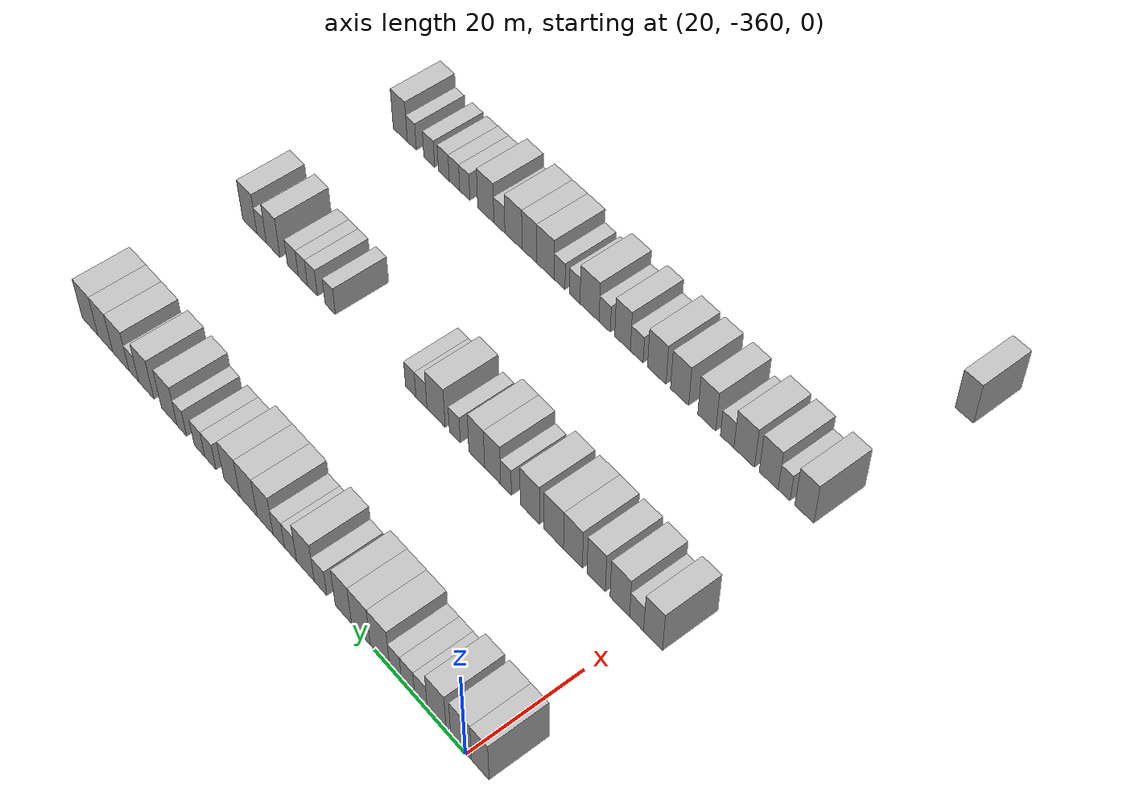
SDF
<sdf version="1.6">
 <world name="default">
  <model name="building_21">
   <static>1</static>
   <pose>25.0000 -362.9768 0 0.000000 0.000000 0.000000</pose>
   <link name="link">
    <pose>0 0 4.50 0 0 0</pose>
    <collision name="collision"><geometry><box><size>10.0000 3.6815 9.0000</size></box></geometry></collision>
    <visual name="visual">
     <cast_shadows>0</cast_shadows>
     <geometry><box><size>10.0000 3.6815 9.0000</size></box></geometry>
     <material>
      <script>
       <uri>model://HANNAS_wall/materials/scripts</uri>
       <uri>model://HANNAS_wall/materials/textures</uri>
       <name>vrc/HANNAS_wall</name>
      </script>
     </material>
    </visual>
   </link>
  </model>
  <model name="building_22">
   <static>1</static>
   <pose>25.0000 -358.9369 0 0.000000 0.000000 0.000000</pose>
   <link name="link">
    <pose>0 0 4.50 0 0 0</pose>
    <collision name="collision"><geometry><box><size>10.0000 4.3981 9.0000</size></box></geometry></collision>
    <visual name="visual">
     <cast_shadows>0</cast_shadows>
     <geometry><box><size>10.0000 4.3981 9.0000</size></box></geometry>
     <material>
      <script>
       <uri>model://HANNAS_wall/materials/scripts</uri>
       <uri>model://HANNAS_wall/materials/textures</uri>
       <name>vrc/HANNAS_wall</name>
      </script>
     </material>
    </visual>
   </link>
  </model>
  <model name="building_23">
   <static>1</static>
   <pose>25.0000 -353.7045 0 0.000000 0.000000 0.000000</pose>
   <link name="link">
    <pose>0 0 4.50 0 0 0</pose>
    <collision name="collision"><geometry><box><size>10.0000 4.0668 9.0000</size></box></geometry></collision>
    <visual name="visual">
     <cast_shadows>0</cast_shadows>
     <geometry><box><size>10.0000 4.0668 9.0000</size></box></geometry>
     <material>
      <script>
       <uri>model://HANNAS_wall/materials/scripts</uri>
       <uri>model://HANNAS_wall/materials/textures</uri>
       <name>vrc/HANNAS_wall</name>
      </script>
     </material>
    </visual>
   </link>
  </model>
  <model name="building_24">
   <static>1</static>
   <pose>25.0000 -350.2815 0 0.000000 0.000000 0.000000</pose>
   <link name="link">
    <pose>0 0 3.00 0 0 0</pose>
    <collision name="collision"><geometry><box><size>10.0000 2.7791 6.0000</size></box></geometry></collision>
    <visual name="visual">
     <cast_shadows>0</cast_shadows>
     <geometry><box><size>10.0000 2.7791 6.0000</size></box></geometry>
     <material>
      <script>
       <uri>model://HANNAS_wall/materials/scripts</uri>
       <uri>model://HANNAS_wall/materials/textures</uri>
       <name>vrc/HANNAS_wall</name>
      </script>
     </material>
    </visual>
   </link>
  </model>
  <model name="building_25">
   <static>1</static>
   <pose>25.0000 -347.4159 0 0.000000 0.000000 0.000000</pose>
   <link name="link">
    <pose>0 0 3.00 0 0 0</pose>
    <collision name="collision"><geometry><box><size>10.0000 2.9520 6.0000</size></box></geometry></collision>
    <visual name="visual">
     <cast_shadows>0</cast_shadows>
     <geometry><box><size>10.0000 2.9520 6.0000</size></box></geometry>
     <material>
      <script>
       <uri>model://HANNAS_wall/materials/scripts</uri>
       <uri>model://HANNAS_wall/materials/textures</uri>
       <name>vrc/HANNAS_wall</name>
      </script>
     </material>
    </visual>
   </link>
  </model>
  <model name="building_26">
   <static>1</static>
   <pose>25.0000 -344.6306 0 0.000000 0.000000 0.000000</pose>
   <link name="link">
    <pose>0 0 3.00 0 0 0</pose>
    <collision name="collision"><geometry><box><size>10.0000 2.6186 6.0000</size></box></geometry></collision>
    <visual name="visual">
     <cast_shadows>0</cast_shadows>
     <geometry><box><size>10.0000 2.6186 6.0000</size></box></geometry>
     <material>
      <script>
       <uri>model://HANNAS_wall/materials/scripts</uri>
       <uri>model://HANNAS_wall/materials/textures</uri>
       <name>vrc/HANNAS_wall</name>
      </script>
     </material>
    </visual>
   </link>
  </model>
  <model name="building_27">
   <static>1</static>
   <pose>25.0000 -341.1353 0 0.000000 0.000000 0.000000</pose>
   <link name="link">
    <pose>0 0 4.50 0 0 0</pose>
    <collision name="collision"><geometry><box><size>10.0000 4.3720 9.0000</size></box></geometry></collision>
    <visual name="visual">
     <cast_shadows>0</cast_shadows>
     <geometry><box><size>10.0000 4.3720 9.0000</size></box></geometry>
     <material>
      <script>
       <uri>model://HANNAS_wall/materials/scripts</uri>
       <uri>model://HANNAS_wall/materials/textures</uri>
       <name>vrc/HANNAS_wall</name>
      </script>
     </material>
    </visual>
   </link>
  </model>
  <model name="building_28">
   <static>1</static>
   <pose>25.0000 -336.7912 0 0.000000 0.000000 0.000000</pose>
   <link name="link">
    <pose>0 0 4.50 0 0 0</pose>
    <collision name="collision"><geometry><box><size>10.0000 4.3162 9.0000</size></box></geometry></collision>
    <visual name="visual">
     <cast_shadows>0</cast_shadows>
     <geometry><box><size>10.0000 4.3162 9.0000</size></box></geometry>
     <material>
      <script>
       <uri>model://HANNAS_wall/materials/scripts</uri>
       <uri>model://HANNAS_wall/materials/textures</uri>
       <name>vrc/HANNAS_wall</name>
      </script>
     </material>
    </visual>
   </link>
  </model>
  <model name="building_29">
   <static>1</static>
   <pose>25.0000 -332.7534 0 0.000000 0.000000 0.000000</pose>
   <link name="link">
    <pose>0 0 4.50 0 0 0</pose>
    <collision name="collision"><geometry><box><size>10.0000 3.7593 9.0000</size></box></geometry></collision>
    <visual name="visual">
     <cast_shadows>0</cast_shadows>
     <geometry><box><size>10.0000 3.7593 9.0000</size></box></geometry>
     <material>
      <script>
       <uri>model://HANNAS_wall/materials/scripts</uri>
       <uri>model://HANNAS_wall/materials/textures</uri>
       <name>vrc/HANNAS_wall</name>
      </script>
     </material>
    </visual>
   </link>
  </model>
  <model name="building_30">
   <static>1</static>
   <pose>25.0000 -327.4053 0 0.000000 0.000000 0.000000</pose>
   <link name="link">
    <pose>0 0 3.00 0 0 0</pose>
    <collision name="collision"><geometry><box><size>10.0000 2.9368 6.0000</size></box></geometry></collision>
    <visual name="visual">
     <cast_shadows>0</cast_shadows>
     <geometry><box><size>10.0000 2.9368 6.0000</size></box></geometry>
     <material>
      <script>
       <uri>model://HANNAS_wall/materials/scripts</uri>
       <uri>model://HANNAS_wall/materials/textures</uri>
       <name>vrc/HANNAS_wall</name>
      </script>
     </material>
    </visual>
   </link>
  </model>
  <model name="building_31">
   <static>1</static>
   <pose>25.0000 -323.8055 0 0.000000 0.000000 0.000000</pose>
   <link name="link">
    <pose>0 0 4.50 0 0 0</pose>
    <collision name="collision"><geometry><box><size>10.0000 4.2628 9.0000</size></box></geometry></collision>
    <visual name="visual">
     <cast_shadows>0</cast_shadows>
     <geometry><box><size>10.0000 4.2628 9.0000</size></box></geometry>
     <material>
      <script>
       <uri>model://HANNAS_wall/materials/scripts</uri>
       <uri>model://HANNAS_wall/materials/textures</uri>
       <name>vrc/HANNAS_wall</name>
      </script>
     </material>
    </visual>
   </link>
  </model>
  <model name="building_32">
   <static>1</static>
   <pose>25.0000 -320.2329 0 0.000000 0.000000 0.000000</pose>
   <link name="link">
    <pose>0 0 3.00 0 0 0</pose>
    <collision name="collision"><geometry><box><size>10.0000 2.8823 6.0000</size></box></geometry></collision>
    <visual name="visual">
     <cast_shadows>0</cast_shadows>
     <geometry><box><size>10.0000 2.8823 6.0000</size></box></geometry>
     <material>
      <script>
       <uri>model://HANNAS_wall/materials/scripts</uri>
       <uri>model://HANNAS_wall/materials/textures</uri>
       <name>vrc/HANNAS_wall</name>
      </script>
     </material>
    </visual>
   </link>
  </model>
  <model name="building_33">
   <static>1</static>
   <pose>25.0000 -317.4139 0 0.000000 0.000000 0.000000</pose>
   <link name="link">
    <pose>0 0 3.00 0 0 0</pose>
    <collision name="collision"><geometry><box><size>10.0000 2.7558 6.0000</size></box></geometry></collision>
    <visual name="visual">
     <cast_shadows>0</cast_shadows>
     <geometry><box><size>10.0000 2.7558 6.0000</size></box></geometry>
     <material>
      <script>
       <uri>model://HANNAS_wall/materials/scripts</uri>
       <uri>model://HANNAS_wall/materials/textures</uri>
       <name>vrc/HANNAS_wall</name>
      </script>
     </material>
    </visual>
   </link>
  </model>
  <model name="building_34">
   <static>1</static>
   <pose>25.0000 -314.0761 0 0.000000 0.000000 0.000000</pose>
   <link name="link">
    <pose>0 0 4.50 0 0 0</pose>
    <collision name="collision"><geometry><box><size>10.0000 3.9198 9.0000</size></box></geometry></collision>
    <visual name="visual">
     <cast_shadows>0</cast_shadows>
     <geometry><box><size>10.0000 3.9198 9.0000</size></box></geometry>
     <material>
      <script>
       <uri>model://HANNAS_wall/materials/scripts</uri>
       <uri>model://HANNAS_wall/materials/textures</uri>
       <name>vrc/HANNAS_wall</name>
      </script>
     </material>
    </visual>
   </link>
  </model>
  <model name="building_35">
   <static>1</static>
   <pose>25.0000 -309.9775 0 0.000000 0.000000 0.000000</pose>
   <link name="link">
    <pose>0 0 4.50 0 0 0</pose>
    <collision name="collision"><geometry><box><size>10.0000 4.2775 9.0000</size></box></geometry></collision>
    <visual name="visual">
     <cast_shadows>0</cast_shadows>
     <geometry><box><size>10.0000 4.2775 9.0000</size></box></geometry>
     <material>
      <script>
       <uri>model://HANNAS_wall/materials/scripts</uri>
       <uri>model://HANNAS_wall/materials/textures</uri>
       <name>vrc/HANNAS_wall</name>
      </script>
     </material>
    </visual>
   </link>
  </model>
  <model name="building_36">
   <static>1</static>
   <pose>25.0000 -305.7788 0 0.000000 0.000000 0.000000</pose>
   <link name="link">
    <pose>0 0 4.50 0 0 0</pose>
    <collision name="collision"><geometry><box><size>10.0000 4.1198 9.0000</size></box></geometry></collision>
    <visual name="visual">
     <cast_shadows>0</cast_shadows>
     <geometry><box><size>10.0000 4.1198 9.0000</size></box></geometry>
     <material>
      <script>
       <uri>model://HANNAS_wall/materials/scripts</uri>
       <uri>model://HANNAS_wall/materials/textures</uri>
       <name>vrc/HANNAS_wall</name>
      </script>
     </material>
    </visual>
   </link>
  </model>
  <model name="building_37">
   <static>1</static>
   <pose>25.0000 -300.2874 0 0.000000 0.000000 0.000000</pose>
   <link name="link">
    <pose>0 0 3.00 0 0 0</pose>
    <collision name="collision"><geometry><box><size>10.0000 2.8631 6.0000</size></box></geometry></collision>
    <visual name="visual">
     <cast_shadows>0</cast_shadows>
     <geometry><box><size>10.0000 2.8631 6.0000</size></box></geometry>
     <material>
      <script>
       <uri>model://HANNAS_wall/materials/scripts</uri>
       <uri>model://HANNAS_wall/materials/textures</uri>
       <name>vrc/HANNAS_wall</name>
      </script>
     </material>
    </visual>
   </link>
  </model>
  <model name="building_38">
   <static>1</static>
   <pose>25.0000 -297.4788 0 0.000000 0.000000 0.000000</pose>
   <link name="link">
    <pose>0 0 3.00 0 0 0</pose>
    <collision name="collision"><geometry><box><size>10.0000 2.7540 6.0000</size></box></geometry></collision>
    <visual name="visual">
     <cast_shadows>0</cast_shadows>
     <geometry><box><size>10.0000 2.7540 6.0000</size></box></geometry>
     <material>
      <script>
       <uri>model://HANNAS_wall/materials/scripts</uri>
       <uri>model://HANNAS_wall/materials/textures</uri>
       <name>vrc/HANNAS_wall</name>
      </script>
     </material>
    </visual>
   </link>
  </model>
  <model name="building_39">
   <static>1</static>
   <pose>25.0000 -292.8592 0 0.000000 0.000000 0.000000</pose>
   <link name="link">
    <pose>0 0 3.00 0 0 0</pose>
    <collision name="collision"><geometry><box><size>10.0000 2.4850 6.0000</size></box></geometry></collision>
    <visual name="visual">
     <cast_shadows>0</cast_shadows>
     <geometry><box><size>10.0000 2.4850 6.0000</size></box></geometry>
     <material>
      <script>
       <uri>model://HANNAS_wall/materials/scripts</uri>
       <uri>model://HANNAS_wall/materials/textures</uri>
       <name>vrc/HANNAS_wall</name>
      </script>
     </material>
    </visual>
   </link>
  </model>
  <model name="building_40">
   <static>1</static>
   <pose>25.0000 -289.5277 0 0.000000 0.000000 0.000000</pose>
   <link name="link">
    <pose>0 0 4.50 0 0 0</pose>
    <collision name="collision"><geometry><box><size>10.0000 4.1780 9.0000</size></box></geometry></collision>
    <visual name="visual">
     <cast_shadows>0</cast_shadows>
     <geometry><box><size>10.0000 4.1780 9.0000</size></box></geometry>
     <material>
      <script>
       <uri>model://HANNAS_wall/materials/scripts</uri>
       <uri>model://HANNAS_wall/materials/textures</uri>
       <name>vrc/HANNAS_wall</name>
      </script>
     </material>
    </visual>
   </link>
  </model>
  <model name="building_41">
   <static>1</static>
   <pose>25.0000 -283.3827 0 0.000000 0.000000 0.000000</pose>
   <link name="link">
    <pose>0 0 4.50 0 0 0</pose>
    <collision name="collision"><geometry><box><size>10.0000 4.1121 9.0000</size></box></geometry></collision>
    <visual name="visual">
     <cast_shadows>0</cast_shadows>
     <geometry><box><size>10.0000 4.1121 9.0000</size></box></geometry>
     <material>
      <script>
       <uri>model://HANNAS_wall/materials/scripts</uri>
       <uri>model://HANNAS_wall/materials/textures</uri>
       <name>vrc/HANNAS_wall</name>
      </script>
     </material>
    </visual>
   </link>
  </model>
  <model name="building_42">
   <static>1</static>
   <pose>25.0000 -280.0124 0 0.000000 0.000000 0.000000</pose>
   <link name="link">
    <pose>0 0 3.00 0 0 0</pose>
    <collision name="collision"><geometry><box><size>10.0000 2.6285 6.0000</size></box></geometry></collision>
    <visual name="visual">
     <cast_shadows>0</cast_shadows>
     <geometry><box><size>10.0000 2.6285 6.0000</size></box></geometry>
     <material>
      <script>
       <uri>model://HANNAS_wall/materials/scripts</uri>
       <uri>model://HANNAS_wall/materials/textures</uri>
       <name>vrc/HANNAS_wall</name>
      </script>
     </material>
    </visual>
   </link>
  </model>
  <model name="building_43">
   <static>1</static>
   <pose>25.0000 -276.4767 0 0.000000 0.000000 0.000000</pose>
   <link name="link">
    <pose>0 0 4.50 0 0 0</pose>
    <collision name="collision"><geometry><box><size>10.0000 4.4429 9.0000</size></box></geometry></collision>
    <visual name="visual">
     <cast_shadows>0</cast_shadows>
     <geometry><box><size>10.0000 4.4429 9.0000</size></box></geometry>
     <material>
      <script>
       <uri>model://HANNAS_wall/materials/scripts</uri>
       <uri>model://HANNAS_wall/materials/textures</uri>
       <name>vrc/HANNAS_wall</name>
      </script>
     </material>
    </visual>
   </link>
  </model>
  <model name="building_44">
   <static>1</static>
   <pose>25.0000 -272.1617 0 0.000000 0.000000 0.000000</pose>
   <link name="link">
    <pose>0 0 4.50 0 0 0</pose>
    <collision name="collision"><geometry><box><size>10.0000 4.1871 9.0000</size></box></geometry></collision>
    <visual name="visual">
     <cast_shadows>0</cast_shadows>
     <geometry><box><size>10.0000 4.1871 9.0000</size></box></geometry>
     <material>
      <script>
       <uri>model://HANNAS_wall/materials/scripts</uri>
       <uri>model://HANNAS_wall/materials/textures</uri>
       <name>vrc/HANNAS_wall</name>
      </script>
     </material>
    </visual>
   </link>
  </model>
  <model name="building_45">
   <static>1</static>
   <pose>25.0000 -267.8288 0 0.000000 0.000000 0.000000</pose>
   <link name="link">
    <pose>0 0 4.50 0 0 0</pose>
    <collision name="collision"><geometry><box><size>10.0000 4.4788 9.0000</size></box></geometry></collision>
    <visual name="visual">
     <cast_shadows>0</cast_shadows>
     <geometry><box><size>10.0000 4.4788 9.0000</size></box></geometry>
     <material>
      <script>
       <uri>model://HANNAS_wall/materials/scripts</uri>
       <uri>model://HANNAS_wall/materials/textures</uri>
       <name>vrc/HANNAS_wall</name>
      </script>
     </material>
    </visual>
   </link>
  </model>
  <model name="building_258">
   <static>1</static>
   <pose>55.0000 -362.4696 0 0.000000 0.000000 0.000000</pose>
   <link name="link">
    <pose>0 0 4.50 0 0 0</pose>
    <collision name="collision"><geometry><box><size>10.0000 3.9073 9.0000</size></box></geometry></collision>
    <visual name="visual">
     <cast_shadows>0</cast_shadows>
     <geometry><box><size>10.0000 3.9073 9.0000</size></box></geometry>
     <material>
      <script>
       <uri>model://HANNAS_wall/materials/scripts</uri>
       <uri>model://HANNAS_wall/materials/textures</uri>
       <name>vrc/HANNAS_wall</name>
      </script>
     </material>
    </visual>
   </link>
  </model>
  <model name="building_259">
   <static>1</static>
   <pose>55.0000 -359.0503 0 0.000000 0.000000 0.000000</pose>
   <link name="link">
    <pose>0 0 3.00 0 0 0</pose>
    <collision name="collision"><geometry><box><size>10.0000 2.9314 6.0000</size></box></geometry></collision>
    <visual name="visual">
     <cast_shadows>0</cast_shadows>
     <geometry><box><size>10.0000 2.9314 6.0000</size></box></geometry>
     <material>
      <script>
       <uri>model://HANNAS_wall/materials/scripts</uri>
       <uri>model://HANNAS_wall/materials/textures</uri>
       <name>vrc/HANNAS_wall</name>
      </script>
     </material>
    </visual>
   </link>
  </model>
  <model name="building_260">
   <static>1</static>
   <pose>55.0000 -355.5190 0 0.000000 0.000000 0.000000</pose>
   <link name="link">
    <pose>0 0 4.50 0 0 0</pose>
    <collision name="collision"><geometry><box><size>10.0000 4.1311 9.0000</size></box></geometry></collision>
    <visual name="visual">
     <cast_shadows>0</cast_shadows>
     <geometry><box><size>10.0000 4.1311 9.0000</size></box></geometry>
     <material>
      <script>
       <uri>model://HANNAS_wall/materials/scripts</uri>
       <uri>model://HANNAS_wall/materials/textures</uri>
       <name>vrc/HANNAS_wall</name>
      </script>
     </material>
    </visual>
   </link>
  </model>
  <model name="building_261">
   <static>1</static>
   <pose>55.0000 -350.4957 0 0.000000 0.000000 0.000000</pose>
   <link name="link">
    <pose>0 0 4.50 0 0 0</pose>
    <collision name="collision"><geometry><box><size>10.0000 3.9154 9.0000</size></box></geometry></collision>
    <visual name="visual">
     <cast_shadows>0</cast_shadows>
     <geometry><box><size>10.0000 3.9154 9.0000</size></box></geometry>
     <material>
      <script>
       <uri>model://HANNAS_wall/materials/scripts</uri>
       <uri>model://HANNAS_wall/materials/textures</uri>
       <name>vrc/HANNAS_wall</name>
      </script>
     </material>
    </visual>
   </link>
  </model>
  <model name="building_262">
   <static>1</static>
   <pose>55.0000 -345.4742 0 0.000000 0.000000 0.000000</pose>
   <link name="link">
    <pose>0 0 4.50 0 0 0</pose>
    <collision name="collision"><geometry><box><size>10.0000 4.1277 9.0000</size></box></geometry></collision>
    <visual name="visual">
     <cast_shadows>0</cast_shadows>
     <geometry><box><size>10.0000 4.1277 9.0000</size></box></geometry>
     <material>
      <script>
       <uri>model://HANNAS_wall/materials/scripts</uri>
       <uri>model://HANNAS_wall/materials/textures</uri>
       <name>vrc/HANNAS_wall</name>
      </script>
     </material>
    </visual>
   </link>
  </model>
  <model name="building_263">
   <static>1</static>
   <pose>55.0000 -341.2629 0 0.000000 0.000000 0.000000</pose>
   <link name="link">
    <pose>0 0 4.50 0 0 0</pose>
    <collision name="collision"><geometry><box><size>10.0000 4.2948 9.0000</size></box></geometry></collision>
    <visual name="visual">
     <cast_shadows>0</cast_shadows>
     <geometry><box><size>10.0000 4.2948 9.0000</size></box></geometry>
     <material>
      <script>
       <uri>model://HANNAS_wall/materials/scripts</uri>
       <uri>model://HANNAS_wall/materials/textures</uri>
       <name>vrc/HANNAS_wall</name>
      </script>
     </material>
    </visual>
   </link>
  </model>
  <model name="building_264">
   <static>1</static>
   <pose>55.0000 -335.9575 0 0.000000 0.000000 0.000000</pose>
   <link name="link">
    <pose>0 0 4.50 0 0 0</pose>
    <collision name="collision"><geometry><box><size>10.0000 4.3159 9.0000</size></box></geometry></collision>
    <visual name="visual">
     <cast_shadows>0</cast_shadows>
     <geometry><box><size>10.0000 4.3159 9.0000</size></box></geometry>
     <material>
      <script>
       <uri>model://HANNAS_wall/materials/scripts</uri>
       <uri>model://HANNAS_wall/materials/textures</uri>
       <name>vrc/HANNAS_wall</name>
      </script>
     </material>
    </visual>
   </link>
  </model>
  <model name="building_265">
   <static>1</static>
   <pose>55.0000 -330.5695 0 0.000000 0.000000 0.000000</pose>
   <link name="link">
    <pose>0 0 3.00 0 0 0</pose>
    <collision name="collision"><geometry><box><size>10.0000 2.4602 6.0000</size></box></geometry></collision>
    <visual name="visual">
     <cast_shadows>0</cast_shadows>
     <geometry><box><size>10.0000 2.4602 6.0000</size></box></geometry>
     <material>
      <script>
       <uri>model://HANNAS_wall/materials/scripts</uri>
       <uri>model://HANNAS_wall/materials/textures</uri>
       <name>vrc/HANNAS_wall</name>
      </script>
     </material>
    </visual>
   </link>
  </model>
  <model name="building_266">
   <static>1</static>
   <pose>55.0000 -327.4958 0 0.000000 0.000000 0.000000</pose>
   <link name="link">
    <pose>0 0 4.50 0 0 0</pose>
    <collision name="collision"><geometry><box><size>10.0000 3.6872 9.0000</size></box></geometry></collision>
    <visual name="visual">
     <cast_shadows>0</cast_shadows>
     <geometry><box><size>10.0000 3.6872 9.0000</size></box></geometry>
     <material>
      <script>
       <uri>model://HANNAS_wall/materials/scripts</uri>
       <uri>model://HANNAS_wall/materials/textures</uri>
       <name>vrc/HANNAS_wall</name>
      </script>
     </material>
    </visual>
   </link>
  </model>
  <model name="building_267">
   <static>1</static>
   <pose>55.0000 -323.8130 0 0.000000 0.000000 0.000000</pose>
   <link name="link">
    <pose>0 0 4.50 0 0 0</pose>
    <collision name="collision"><geometry><box><size>10.0000 3.6784 9.0000</size></box></geometry></collision>
    <visual name="visual">
     <cast_shadows>0</cast_shadows>
     <geometry><box><size>10.0000 3.6784 9.0000</size></box></geometry>
     <material>
      <script>
       <uri>model://HANNAS_wall/materials/scripts</uri>
       <uri>model://HANNAS_wall/materials/textures</uri>
       <name>vrc/HANNAS_wall</name>
      </script>
     </material>
    </visual>
   </link>
  </model>
  <model name="building_268">
   <static>1</static>
   <pose>55.0000 -318.6812 0 0.000000 0.000000 0.000000</pose>
   <link name="link">
    <pose>0 0 3.00 0 0 0</pose>
    <collision name="collision"><geometry><box><size>10.0000 2.5852 6.0000</size></box></geometry></collision>
    <visual name="visual">
     <cast_shadows>0</cast_shadows>
     <geometry><box><size>10.0000 2.5852 6.0000</size></box></geometry>
     <material>
      <script>
       <uri>model://HANNAS_wall/materials/scripts</uri>
       <uri>model://HANNAS_wall/materials/textures</uri>
       <name>vrc/HANNAS_wall</name>
      </script>
     </material>
    </visual>
   </link>
  </model>
  <model name="building_269">
   <static>1</static>
   <pose>55.0000 -314.2012 0 0.000000 0.000000 0.000000</pose>
   <link name="link">
    <pose>0 0 4.50 0 0 0</pose>
    <collision name="collision"><geometry><box><size>10.0000 4.3748 9.0000</size></box></geometry></collision>
    <visual name="visual">
     <cast_shadows>0</cast_shadows>
     <geometry><box><size>10.0000 4.3748 9.0000</size></box></geometry>
     <material>
      <script>
       <uri>model://HANNAS_wall/materials/scripts</uri>
       <uri>model://HANNAS_wall/materials/textures</uri>
       <name>vrc/HANNAS_wall</name>
      </script>
     </material>
    </visual>
   </link>
  </model>
  <model name="building_270">
   <static>1</static>
   <pose>55.0000 -310.6794 0 0.000000 0.000000 0.000000</pose>
   <link name="link">
    <pose>0 0 3.00 0 0 0</pose>
    <collision name="collision"><geometry><box><size>10.0000 2.6689 6.0000</size></box></geometry></collision>
    <visual name="visual">
     <cast_shadows>0</cast_shadows>
     <geometry><box><size>10.0000 2.6689 6.0000</size></box></geometry>
     <material>
      <script>
       <uri>model://HANNAS_wall/materials/scripts</uri>
       <uri>model://HANNAS_wall/materials/textures</uri>
       <name>vrc/HANNAS_wall</name>
      </script>
     </material>
    </visual>
   </link>
  </model>
  <model name="building_271">
   <static>1</static>
   <pose>55.0000 -308.0795 0 0.000000 0.000000 0.000000</pose>
   <link name="link">
    <pose>0 0 3.00 0 0 0</pose>
    <collision name="collision"><geometry><box><size>10.0000 2.5308 6.0000</size></box></geometry></collision>
    <visual name="visual">
     <cast_shadows>0</cast_shadows>
     <geometry><box><size>10.0000 2.5308 6.0000</size></box></geometry>
     <material>
      <script>
       <uri>model://HANNAS_wall/materials/scripts</uri>
       <uri>model://HANNAS_wall/materials/textures</uri>
       <name>vrc/HANNAS_wall</name>
      </script>
     </material>
    </visual>
   </link>
  </model>
  <model name="building_272">
   <static>1</static>
   <pose>55.0000 -287.8400 0 0.000000 0.000000 0.000000</pose>
   <link name="link">
    <pose>0 0 3.00 0 0 0</pose>
    <collision name="collision"><geometry><box><size>10.0000 2.6494 6.0000</size></box></geometry></collision>
    <visual name="visual">
     <cast_shadows>0</cast_shadows>
     <geometry><box><size>10.0000 2.6494 6.0000</size></box></geometry>
     <material>
      <script>
       <uri>model://HANNAS_wall/materials/scripts</uri>
       <uri>model://HANNAS_wall/materials/textures</uri>
       <name>vrc/HANNAS_wall</name>
      </script>
     </material>
    </visual>
   </link>
  </model>
  <model name="building_273">
   <static>1</static>
   <pose>55.0000 -283.1955 0 0.000000 0.000000 0.000000</pose>
   <link name="link">
    <pose>0 0 3.00 0 0 0</pose>
    <collision name="collision"><geometry><box><size>10.0000 2.6397 6.0000</size></box></geometry></collision>
    <visual name="visual">
     <cast_shadows>0</cast_shadows>
     <geometry><box><size>10.0000 2.6397 6.0000</size></box></geometry>
     <material>
      <script>
       <uri>model://HANNAS_wall/materials/scripts</uri>
       <uri>model://HANNAS_wall/materials/textures</uri>
       <name>vrc/HANNAS_wall</name>
      </script>
     </material>
    </visual>
   </link>
  </model>
  <model name="building_274">
   <static>1</static>
   <pose>55.0000 -280.6687 0 0.000000 0.000000 0.000000</pose>
   <link name="link">
    <pose>0 0 3.00 0 0 0</pose>
    <collision name="collision"><geometry><box><size>10.0000 2.4140 6.0000</size></box></geometry></collision>
    <visual name="visual">
     <cast_shadows>0</cast_shadows>
     <geometry><box><size>10.0000 2.4140 6.0000</size></box></geometry>
     <material>
      <script>
       <uri>model://HANNAS_wall/materials/scripts</uri>
       <uri>model://HANNAS_wall/materials/textures</uri>
       <name>vrc/HANNAS_wall</name>
      </script>
     </material>
    </visual>
   </link>
  </model>
  <model name="building_275">
   <static>1</static>
   <pose>55.0000 -278.0138 0 0.000000 0.000000 0.000000</pose>
   <link name="link">
    <pose>0 0 3.00 0 0 0</pose>
    <collision name="collision"><geometry><box><size>10.0000 2.8957 6.0000</size></box></geometry></collision>
    <visual name="visual">
     <cast_shadows>0</cast_shadows>
     <geometry><box><size>10.0000 2.8957 6.0000</size></box></geometry>
     <material>
      <script>
       <uri>model://HANNAS_wall/materials/scripts</uri>
       <uri>model://HANNAS_wall/materials/textures</uri>
       <name>vrc/HANNAS_wall</name>
      </script>
     </material>
    </visual>
   </link>
  </model>
  <model name="building_276">
   <static>1</static>
   <pose>55.0000 -272.7363 0 0.000000 0.000000 0.000000</pose>
   <link name="link">
    <pose>0 0 4.50 0 0 0</pose>
    <collision name="collision"><geometry><box><size>10.0000 3.6594 9.0000</size></box></geometry></collision>
    <visual name="visual">
     <cast_shadows>0</cast_shadows>
     <geometry><box><size>10.0000 3.6594 9.0000</size></box></geometry>
     <material>
      <script>
       <uri>model://HANNAS_wall/materials/scripts</uri>
       <uri>model://HANNAS_wall/materials/textures</uri>
       <name>vrc/HANNAS_wall</name>
      </script>
     </material>
    </visual>
   </link>
  </model>
  <model name="building_277">
   <static>1</static>
   <pose>55.0000 -269.6053 0 0.000000 0.000000 0.000000</pose>
   <link name="link">
    <pose>0 0 3.00 0 0 0</pose>
    <collision name="collision"><geometry><box><size>10.0000 2.6027 6.0000</size></box></geometry></collision>
    <visual name="visual">
     <cast_shadows>0</cast_shadows>
     <geometry><box><size>10.0000 2.6027 6.0000</size></box></geometry>
     <material>
      <script>
       <uri>model://HANNAS_wall/materials/scripts</uri>
       <uri>model://HANNAS_wall/materials/textures</uri>
       <name>vrc/HANNAS_wall</name>
      </script>
     </material>
    </visual>
   </link>
  </model>
  <model name="building_278">
   <static>1</static>
   <pose>55.0000 -266.3374 0 0.000000 0.000000 0.000000</pose>
   <link name="link">
    <pose>0 0 4.50 0 0 0</pose>
    <collision name="collision"><geometry><box><size>10.0000 3.9331 9.0000</size></box></geometry></collision>
    <visual name="visual">
     <cast_shadows>0</cast_shadows>
     <geometry><box><size>10.0000 3.9331 9.0000</size></box></geometry>
     <material>
      <script>
       <uri>model://HANNAS_wall/materials/scripts</uri>
       <uri>model://HANNAS_wall/materials/textures</uri>
       <name>vrc/HANNAS_wall</name>
      </script>
     </material>
    </visual>
   </link>
  </model>
  <model name="building_501">
   <static>1</static>
   <pose>85.0000 -360.3194 0 0.000000 0.000000 0.000000</pose>
   <link name="link">
    <pose>0 0 4.50 0 0 0</pose>
    <collision name="collision"><geometry><box><size>10.0000 3.9060 9.0000</size></box></geometry></collision>
    <visual name="visual">
     <cast_shadows>0</cast_shadows>
     <geometry><box><size>10.0000 3.9060 9.0000</size></box></geometry>
     <material>
      <script>
       <uri>model://HANNAS_wall/materials/scripts</uri>
       <uri>model://HANNAS_wall/materials/textures</uri>
       <name>vrc/HANNAS_wall</name>
      </script>
     </material>
    </visual>
   </link>
  </model>
  <model name="building_502">
   <static>1</static>
   <pose>85.0000 -356.1388 0 0.000000 0.000000 0.000000</pose>
   <link name="link">
    <pose>0 0 3.00 0 0 0</pose>
    <collision name="collision"><geometry><box><size>10.0000 2.4554 6.0000</size></box></geometry></collision>
    <visual name="visual">
     <cast_shadows>0</cast_shadows>
     <geometry><box><size>10.0000 2.4554 6.0000</size></box></geometry>
     <material>
      <script>
       <uri>model://HANNAS_wall/materials/scripts</uri>
       <uri>model://HANNAS_wall/materials/textures</uri>
       <name>vrc/HANNAS_wall</name>
      </script>
     </material>
    </visual>
   </link>
  </model>
  <model name="building_503">
   <static>1</static>
   <pose>85.0000 -352.9191 0 0.000000 0.000000 0.000000</pose>
   <link name="link">
    <pose>0 0 4.50 0 0 0</pose>
    <collision name="collision"><geometry><box><size>10.0000 3.9840 9.0000</size></box></geometry></collision>
    <visual name="visual">
     <cast_shadows>0</cast_shadows>
     <geometry><box><size>10.0000 3.9840 9.0000</size></box></geometry>
     <material>
      <script>
       <uri>model://HANNAS_wall/materials/scripts</uri>
       <uri>model://HANNAS_wall/materials/textures</uri>
       <name>vrc/HANNAS_wall</name>
      </script>
     </material>
    </visual>
   </link>
  </model>
  <model name="building_504">
   <static>1</static>
   <pose>85.0000 -347.7332 0 0.000000 0.000000 0.000000</pose>
   <link name="link">
    <pose>0 0 4.50 0 0 0</pose>
    <collision name="collision"><geometry><box><size>10.0000 4.3878 9.0000</size></box></geometry></collision>
    <visual name="visual">
     <cast_shadows>0</cast_shadows>
     <geometry><box><size>10.0000 4.3878 9.0000</size></box></geometry>
     <material>
      <script>
       <uri>model://HANNAS_wall/materials/scripts</uri>
       <uri>model://HANNAS_wall/materials/textures</uri>
       <name>vrc/HANNAS_wall</name>
      </script>
     </material>
    </visual>
   </link>
  </model>
  <model name="building_505">
   <static>1</static>
   <pose>85.0000 -344.0850 0 0.000000 0.000000 0.000000</pose>
   <link name="link">
    <pose>0 0 3.00 0 0 0</pose>
    <collision name="collision"><geometry><box><size>10.0000 2.9085 6.0000</size></box></geometry></collision>
    <visual name="visual">
     <cast_shadows>0</cast_shadows>
     <geometry><box><size>10.0000 2.9085 6.0000</size></box></geometry>
     <material>
      <script>
       <uri>model://HANNAS_wall/materials/scripts</uri>
       <uri>model://HANNAS_wall/materials/textures</uri>
       <name>vrc/HANNAS_wall</name>
      </script>
     </material>
    </visual>
   </link>
  </model>
  <model name="building_506">
   <static>1</static>
   <pose>85.0000 -339.6671 0 0.000000 0.000000 0.000000</pose>
   <link name="link">
    <pose>0 0 4.50 0 0 0</pose>
    <collision name="collision"><geometry><box><size>10.0000 3.9273 9.0000</size></box></geometry></collision>
    <visual name="visual">
     <cast_shadows>0</cast_shadows>
     <geometry><box><size>10.0000 3.9273 9.0000</size></box></geometry>
     <material>
      <script>
       <uri>model://HANNAS_wall/materials/scripts</uri>
       <uri>model://HANNAS_wall/materials/textures</uri>
       <name>vrc/HANNAS_wall</name>
      </script>
     </material>
    </visual>
   </link>
  </model>
  <model name="building_507">
   <static>1</static>
   <pose>85.0000 -333.6791 0 0.000000 0.000000 0.000000</pose>
   <link name="link">
    <pose>0 0 4.50 0 0 0</pose>
    <collision name="collision"><geometry><box><size>10.0000 4.0487 9.0000</size></box></geometry></collision>
    <visual name="visual">
     <cast_shadows>0</cast_shadows>
     <geometry><box><size>10.0000 4.0487 9.0000</size></box></geometry>
     <material>
      <script>
       <uri>model://HANNAS_wall/materials/scripts</uri>
       <uri>model://HANNAS_wall/materials/textures</uri>
       <name>vrc/HANNAS_wall</name>
      </script>
     </material>
    </visual>
   </link>
  </model>
  <model name="building_508">
   <static>1</static>
   <pose>85.0000 -328.5706 0 0.000000 0.000000 0.000000</pose>
   <link name="link">
    <pose>0 0 4.50 0 0 0</pose>
    <collision name="collision"><geometry><box><size>10.0000 4.1685 9.0000</size></box></geometry></collision>
    <visual name="visual">
     <cast_shadows>0</cast_shadows>
     <geometry><box><size>10.0000 4.1685 9.0000</size></box></geometry>
     <material>
      <script>
       <uri>model://HANNAS_wall/materials/scripts</uri>
       <uri>model://HANNAS_wall/materials/textures</uri>
       <name>vrc/HANNAS_wall</name>
      </script>
     </material>
    </visual>
   </link>
  </model>
  <model name="building_509">
   <static>1</static>
   <pose>85.0000 -324.0355 0 0.000000 0.000000 0.000000</pose>
   <link name="link">
    <pose>0 0 3.00 0 0 0</pose>
    <collision name="collision"><geometry><box><size>10.0000 2.9017 6.0000</size></box></geometry></collision>
    <visual name="visual">
     <cast_shadows>0</cast_shadows>
     <geometry><box><size>10.0000 2.9017 6.0000</size></box></geometry>
     <material>
      <script>
       <uri>model://HANNAS_wall/materials/scripts</uri>
       <uri>model://HANNAS_wall/materials/textures</uri>
       <name>vrc/HANNAS_wall</name>
      </script>
     </material>
    </visual>
   </link>
  </model>
  <model name="building_510">
   <static>1</static>
   <pose>85.0000 -320.7772 0 0.000000 0.000000 0.000000</pose>
   <link name="link">
    <pose>0 0 4.50 0 0 0</pose>
    <collision name="collision"><geometry><box><size>10.0000 3.6149 9.0000</size></box></geometry></collision>
    <visual name="visual">
     <cast_shadows>0</cast_shadows>
     <geometry><box><size>10.0000 3.6149 9.0000</size></box></geometry>
     <material>
      <script>
       <uri>model://HANNAS_wall/materials/scripts</uri>
       <uri>model://HANNAS_wall/materials/textures</uri>
       <name>vrc/HANNAS_wall</name>
      </script>
     </material>
    </visual>
   </link>
  </model>
  <model name="building_511">
   <static>1</static>
   <pose>85.0000 -316.6486 0 0.000000 0.000000 0.000000</pose>
   <link name="link">
    <pose>0 0 3.00 0 0 0</pose>
    <collision name="collision"><geometry><box><size>10.0000 2.6425 6.0000</size></box></geometry></collision>
    <visual name="visual">
     <cast_shadows>0</cast_shadows>
     <geometry><box><size>10.0000 2.6425 6.0000</size></box></geometry>
     <material>
      <script>
       <uri>model://HANNAS_wall/materials/scripts</uri>
       <uri>model://HANNAS_wall/materials/textures</uri>
       <name>vrc/HANNAS_wall</name>
      </script>
     </material>
    </visual>
   </link>
  </model>
  <model name="building_512">
   <static>1</static>
   <pose>85.0000 -313.0781 0 0.000000 0.000000 0.000000</pose>
   <link name="link">
    <pose>0 0 4.50 0 0 0</pose>
    <collision name="collision"><geometry><box><size>10.0000 4.4985 9.0000</size></box></geometry></collision>
    <visual name="visual">
     <cast_shadows>0</cast_shadows>
     <geometry><box><size>10.0000 4.4985 9.0000</size></box></geometry>
     <material>
      <script>
       <uri>model://HANNAS_wall/materials/scripts</uri>
       <uri>model://HANNAS_wall/materials/textures</uri>
       <name>vrc/HANNAS_wall</name>
      </script>
     </material>
    </visual>
   </link>
  </model>
  <model name="building_513">
   <static>1</static>
   <pose>85.0000 -309.5334 0 0.000000 0.000000 0.000000</pose>
   <link name="link">
    <pose>0 0 3.00 0 0 0</pose>
    <collision name="collision"><geometry><box><size>10.0000 2.5910 6.0000</size></box></geometry></collision>
    <visual name="visual">
     <cast_shadows>0</cast_shadows>
     <geometry><box><size>10.0000 2.5910 6.0000</size></box></geometry>
     <material>
      <script>
       <uri>model://HANNAS_wall/materials/scripts</uri>
       <uri>model://HANNAS_wall/materials/textures</uri>
       <name>vrc/HANNAS_wall</name>
      </script>
     </material>
    </visual>
   </link>
  </model>
  <model name="building_514">
   <static>1</static>
   <pose>85.0000 -305.9241 0 0.000000 0.000000 0.000000</pose>
   <link name="link">
    <pose>0 0 3.00 0 0 0</pose>
    <collision name="collision"><geometry><box><size>10.0000 2.6275 6.0000</size></box></geometry></collision>
    <visual name="visual">
     <cast_shadows>0</cast_shadows>
     <geometry><box><size>10.0000 2.6275 6.0000</size></box></geometry>
     <material>
      <script>
       <uri>model://HANNAS_wall/materials/scripts</uri>
       <uri>model://HANNAS_wall/materials/textures</uri>
       <name>vrc/HANNAS_wall</name>
      </script>
     </material>
    </visual>
   </link>
  </model>
  <model name="building_515">
   <static>1</static>
   <pose>85.0000 -302.5046 0 0.000000 0.000000 0.000000</pose>
   <link name="link">
    <pose>0 0 4.50 0 0 0</pose>
    <collision name="collision"><geometry><box><size>10.0000 4.2116 9.0000</size></box></geometry></collision>
    <visual name="visual">
     <cast_shadows>0</cast_shadows>
     <geometry><box><size>10.0000 4.2116 9.0000</size></box></geometry>
     <material>
      <script>
       <uri>model://HANNAS_wall/materials/scripts</uri>
       <uri>model://HANNAS_wall/materials/textures</uri>
       <name>vrc/HANNAS_wall</name>
      </script>
     </material>
    </visual>
   </link>
  </model>
  <model name="building_516">
   <static>1</static>
   <pose>85.0000 -298.5905 0 0.000000 0.000000 0.000000</pose>
   <link name="link">
    <pose>0 0 4.50 0 0 0</pose>
    <collision name="collision"><geometry><box><size>10.0000 3.6166 9.0000</size></box></geometry></collision>
    <visual name="visual">
     <cast_shadows>0</cast_shadows>
     <geometry><box><size>10.0000 3.6166 9.0000</size></box></geometry>
     <material>
      <script>
       <uri>model://HANNAS_wall/materials/scripts</uri>
       <uri>model://HANNAS_wall/materials/textures</uri>
       <name>vrc/HANNAS_wall</name>
      </script>
     </material>
    </visual>
   </link>
  </model>
  <model name="building_517">
   <static>1</static>
   <pose>85.0000 -294.6460 0 0.000000 0.000000 0.000000</pose>
   <link name="link">
    <pose>0 0 4.50 0 0 0</pose>
    <collision name="collision"><geometry><box><size>10.0000 4.2724 9.0000</size></box></geometry></collision>
    <visual name="visual">
     <cast_shadows>0</cast_shadows>
     <geometry><box><size>10.0000 4.2724 9.0000</size></box></geometry>
     <material>
      <script>
       <uri>model://HANNAS_wall/materials/scripts</uri>
       <uri>model://HANNAS_wall/materials/textures</uri>
       <name>vrc/HANNAS_wall</name>
      </script>
     </material>
    </visual>
   </link>
  </model>
  <model name="building_518">
   <static>1</static>
   <pose>85.0000 -291.1364 0 0.000000 0.000000 0.000000</pose>
   <link name="link">
    <pose>0 0 3.00 0 0 0</pose>
    <collision name="collision"><geometry><box><size>10.0000 2.7468 6.0000</size></box></geometry></collision>
    <visual name="visual">
     <cast_shadows>0</cast_shadows>
     <geometry><box><size>10.0000 2.7468 6.0000</size></box></geometry>
     <material>
      <script>
       <uri>model://HANNAS_wall/materials/scripts</uri>
       <uri>model://HANNAS_wall/materials/textures</uri>
       <name>vrc/HANNAS_wall</name>
      </script>
     </material>
    </visual>
   </link>
  </model>
  <model name="building_519">
   <static>1</static>
   <pose>85.0000 -287.6998 0 0.000000 0.000000 0.000000</pose>
   <link name="link">
    <pose>0 0 4.50 0 0 0</pose>
    <collision name="collision"><geometry><box><size>10.0000 4.1264 9.0000</size></box></geometry></collision>
    <visual name="visual">
     <cast_shadows>0</cast_shadows>
     <geometry><box><size>10.0000 4.1264 9.0000</size></box></geometry>
     <material>
      <script>
       <uri>model://HANNAS_wall/materials/scripts</uri>
       <uri>model://HANNAS_wall/materials/textures</uri>
       <name>vrc/HANNAS_wall</name>
      </script>
     </material>
    </visual>
   </link>
  </model>
  <model name="building_520">
   <static>1</static>
   <pose>85.0000 -282.3256 0 0.000000 0.000000 0.000000</pose>
   <link name="link">
    <pose>0 0 3.00 0 0 0</pose>
    <collision name="collision"><geometry><box><size>10.0000 2.6219 6.0000</size></box></geometry></collision>
    <visual name="visual">
     <cast_shadows>0</cast_shadows>
     <geometry><box><size>10.0000 2.6219 6.0000</size></box></geometry>
     <material>
      <script>
       <uri>model://HANNAS_wall/materials/scripts</uri>
       <uri>model://HANNAS_wall/materials/textures</uri>
       <name>vrc/HANNAS_wall</name>
      </script>
     </material>
    </visual>
   </link>
  </model>
  <model name="building_521">
   <static>1</static>
   <pose>85.0000 -279.6578 0 0.000000 0.000000 0.000000</pose>
   <link name="link">
    <pose>0 0 3.00 0 0 0</pose>
    <collision name="collision"><geometry><box><size>10.0000 2.7138 6.0000</size></box></geometry></collision>
    <visual name="visual">
     <cast_shadows>0</cast_shadows>
     <geometry><box><size>10.0000 2.7138 6.0000</size></box></geometry>
     <material>
      <script>
       <uri>model://HANNAS_wall/materials/scripts</uri>
       <uri>model://HANNAS_wall/materials/textures</uri>
       <name>vrc/HANNAS_wall</name>
      </script>
     </material>
    </visual>
   </link>
  </model>
  <model name="building_522">
   <static>1</static>
   <pose>85.0000 -276.8951 0 0.000000 0.000000 0.000000</pose>
   <link name="link">
    <pose>0 0 3.00 0 0 0</pose>
    <collision name="collision"><geometry><box><size>10.0000 2.8116 6.0000</size></box></geometry></collision>
    <visual name="visual">
     <cast_shadows>0</cast_shadows>
     <geometry><box><size>10.0000 2.8116 6.0000</size></box></geometry>
     <material>
      <script>
       <uri>model://HANNAS_wall/materials/scripts</uri>
       <uri>model://HANNAS_wall/materials/textures</uri>
       <name>vrc/HANNAS_wall</name>
      </script>
     </material>
    </visual>
   </link>
  </model>
  <model name="building_523">
   <static>1</static>
   <pose>85.0000 -273.0690 0 0.000000 0.000000 0.000000</pose>
   <link name="link">
    <pose>0 0 3.00 0 0 0</pose>
    <collision name="collision"><geometry><box><size>10.0000 2.8406 6.0000</size></box></geometry></collision>
    <visual name="visual">
     <cast_shadows>0</cast_shadows>
     <geometry><box><size>10.0000 2.8406 6.0000</size></box></geometry>
     <material>
      <script>
       <uri>model://HANNAS_wall/materials/scripts</uri>
       <uri>model://HANNAS_wall/materials/textures</uri>
       <name>vrc/HANNAS_wall</name>
      </script>
     </material>
    </visual>
   </link>
  </model>
  <model name="building_524">
   <static>1</static>
   <pose>85.0000 -268.4425 0 0.000000 0.000000 0.000000</pose>
   <link name="link">
    <pose>0 0 3.00 0 0 0</pose>
    <collision name="collision"><geometry><box><size>10.0000 2.4125 6.0000</size></box></geometry></collision>
    <visual name="visual">
     <cast_shadows>0</cast_shadows>
     <geometry><box><size>10.0000 2.4125 6.0000</size></box></geometry>
     <material>
      <script>
       <uri>model://HANNAS_wall/materials/scripts</uri>
       <uri>model://HANNAS_wall/materials/textures</uri>
       <name>vrc/HANNAS_wall</name>
      </script>
     </material>
    </visual>
   </link>
  </model>
  <model name="building_525">
   <static>1</static>
   <pose>85.0000 -265.3462 0 0.000000 0.000000 0.000000</pose>
   <link name="link">
    <pose>0 0 4.50 0 0 0</pose>
    <collision name="collision"><geometry><box><size>10.0000 3.7800 9.0000</size></box></geometry></collision>
    <visual name="visual">
     <cast_shadows>0</cast_shadows>
     <geometry><box><size>10.0000 3.7800 9.0000</size></box></geometry>
     <material>
      <script>
       <uri>model://HANNAS_wall/materials/scripts</uri>
       <uri>model://HANNAS_wall/materials/textures</uri>
       <name>vrc/HANNAS_wall</name>
      </script>
     </material>
    </visual>
   </link>
  </model>
  <model name="building_726">
   <static>1</static>
   <pose>115.0000 -362.3565 0 0.000000 0.000000 0.000000</pose>
   <link name="link">
    <pose>0 0 4.50 0 0 0</pose>
    <collision name="collision"><geometry><box><size>10.0000 3.7141 9.0000</size></box></geometry></collision>
    <visual name="visual">
     <cast_shadows>0</cast_shadows>
     <geometry><box><size>10.0000 3.7141 9.0000</size></box></geometry>
     <material>
      <script>
       <uri>model://HANNAS_wall/materials/scripts</uri>
       <uri>model://HANNAS_wall/materials/textures</uri>
       <name>vrc/HANNAS_wall</name>
      </script>
     </material>
    </visual>
   </link>
  </model>
 </world>
</sdf>
